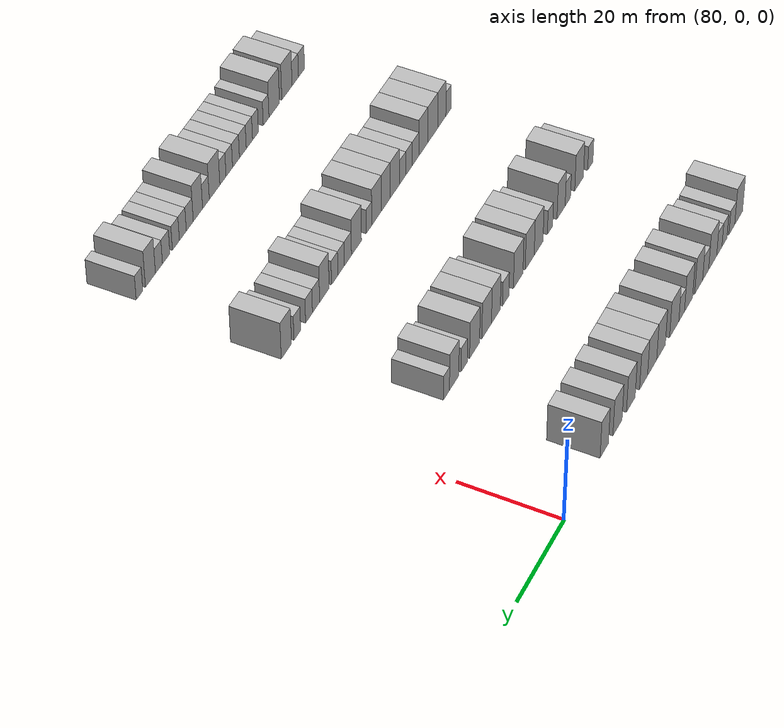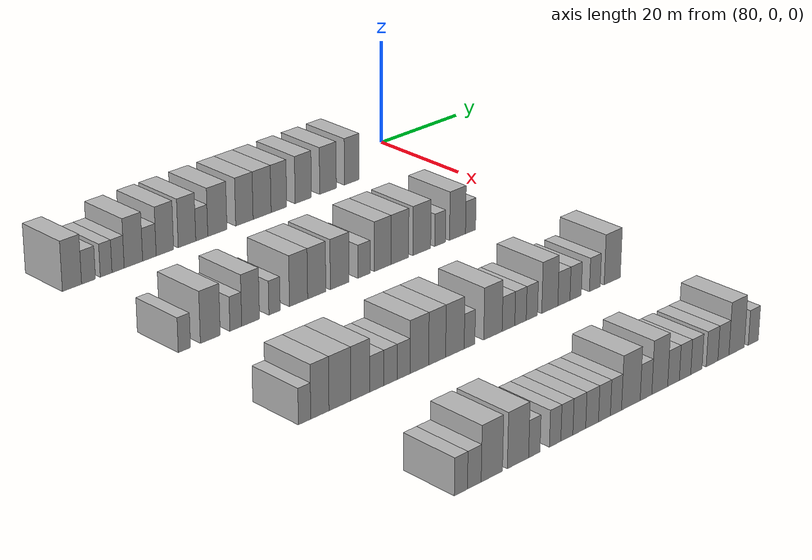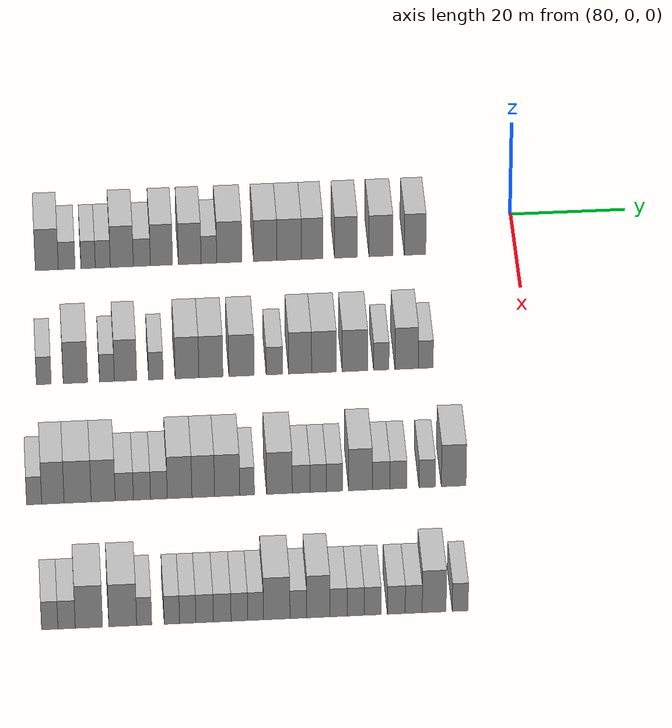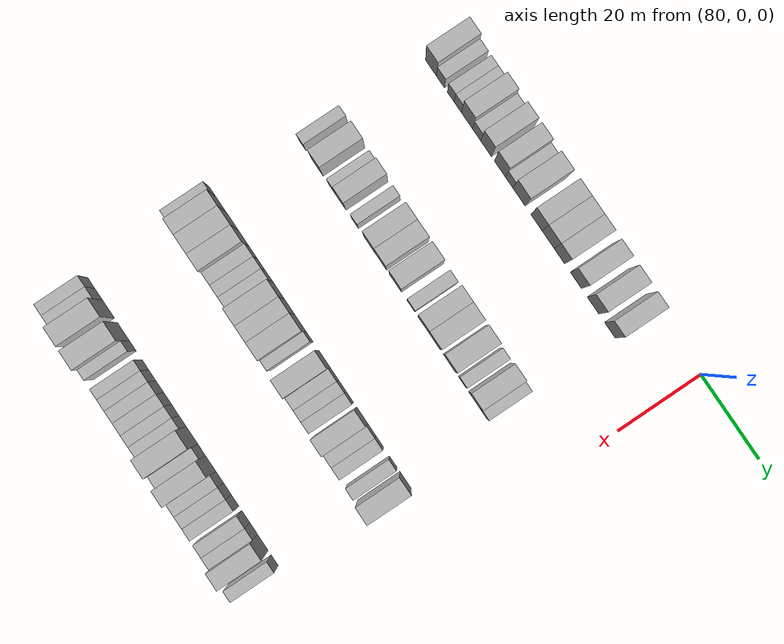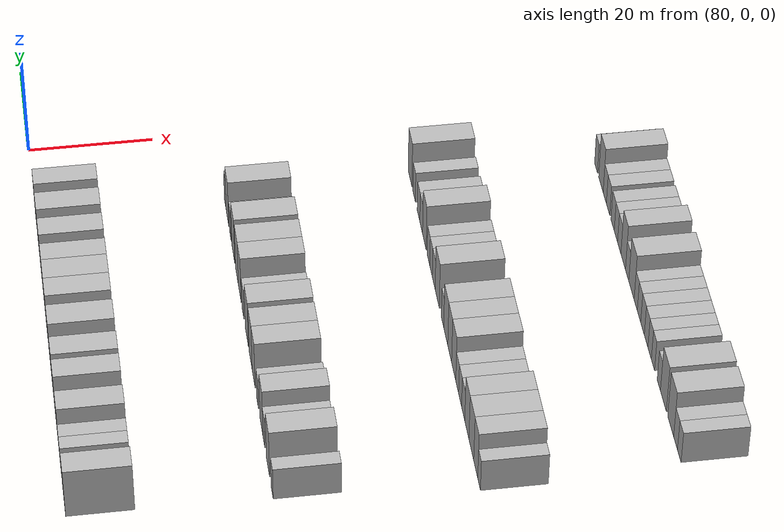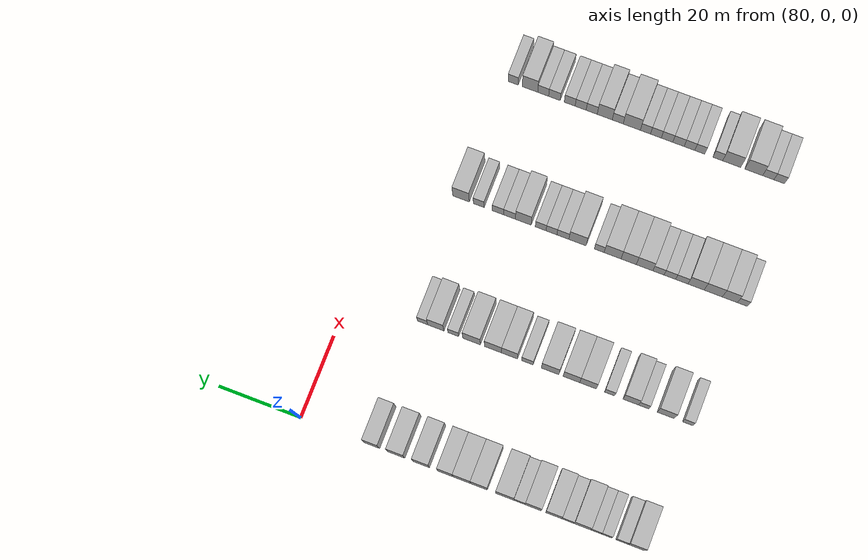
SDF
<sdf version="1.6">
 <world name="default">
  <model name="building_535">
   <static>1</static>
   <pose>85.0000 -80.4935 0 0.000000 0.000000 0.000000</pose>
   <link name="link">
    <pose>0 0 4.50 0 0 0</pose>
    <collision name="collision"><geometry><box><size>10.0000 3.9296 9.0000</size></box></geometry></collision>
    <visual name="visual">
     <cast_shadows>0</cast_shadows>
     <geometry><box><size>10.0000 3.9296 9.0000</size></box></geometry>
     <material>
      <script>
       <uri>model://HANNAS_wall/materials/scripts</uri>
       <uri>model://HANNAS_wall/materials/textures</uri>
       <name>vrc/HANNAS_wall</name>
      </script>
     </material>
    </visual>
   </link>
  </model>
  <model name="building_536">
   <static>1</static>
   <pose>85.0000 -77.0921 0 0.000000 0.000000 0.000000</pose>
   <link name="link">
    <pose>0 0 3.00 0 0 0</pose>
    <collision name="collision"><geometry><box><size>10.0000 2.8733 6.0000</size></box></geometry></collision>
    <visual name="visual">
     <cast_shadows>0</cast_shadows>
     <geometry><box><size>10.0000 2.8733 6.0000</size></box></geometry>
     <material>
      <script>
       <uri>model://HANNAS_wall/materials/scripts</uri>
       <uri>model://HANNAS_wall/materials/textures</uri>
       <name>vrc/HANNAS_wall</name>
      </script>
     </material>
    </visual>
   </link>
  </model>
  <model name="building_537">
   <static>1</static>
   <pose>85.0000 -73.4251 0 0.000000 0.000000 0.000000</pose>
   <link name="link">
    <pose>0 0 3.00 0 0 0</pose>
    <collision name="collision"><geometry><box><size>10.0000 2.4605 6.0000</size></box></geometry></collision>
    <visual name="visual">
     <cast_shadows>0</cast_shadows>
     <geometry><box><size>10.0000 2.4605 6.0000</size></box></geometry>
     <material>
      <script>
       <uri>model://HANNAS_wall/materials/scripts</uri>
       <uri>model://HANNAS_wall/materials/textures</uri>
       <name>vrc/HANNAS_wall</name>
      </script>
     </material>
    </visual>
   </link>
  </model>
  <model name="building_538">
   <static>1</static>
   <pose>85.0000 -70.9087 0 0.000000 0.000000 0.000000</pose>
   <link name="link">
    <pose>0 0 3.00 0 0 0</pose>
    <collision name="collision"><geometry><box><size>10.0000 2.5722 6.0000</size></box></geometry></collision>
    <visual name="visual">
     <cast_shadows>0</cast_shadows>
     <geometry><box><size>10.0000 2.5722 6.0000</size></box></geometry>
     <material>
      <script>
       <uri>model://HANNAS_wall/materials/scripts</uri>
       <uri>model://HANNAS_wall/materials/textures</uri>
       <name>vrc/HANNAS_wall</name>
      </script>
     </material>
    </visual>
   </link>
  </model>
  <model name="building_539">
   <static>1</static>
   <pose>85.0000 -67.6504 0 0.000000 0.000000 0.000000</pose>
   <link name="link">
    <pose>0 0 4.50 0 0 0</pose>
    <collision name="collision"><geometry><box><size>10.0000 3.9444 9.0000</size></box></geometry></collision>
    <visual name="visual">
     <cast_shadows>0</cast_shadows>
     <geometry><box><size>10.0000 3.9444 9.0000</size></box></geometry>
     <material>
      <script>
       <uri>model://HANNAS_wall/materials/scripts</uri>
       <uri>model://HANNAS_wall/materials/textures</uri>
       <name>vrc/HANNAS_wall</name>
      </script>
     </material>
    </visual>
   </link>
  </model>
  <model name="building_540">
   <static>1</static>
   <pose>85.0000 -64.2183 0 0.000000 0.000000 0.000000</pose>
   <link name="link">
    <pose>0 0 3.00 0 0 0</pose>
    <collision name="collision"><geometry><box><size>10.0000 2.9199 6.0000</size></box></geometry></collision>
    <visual name="visual">
     <cast_shadows>0</cast_shadows>
     <geometry><box><size>10.0000 2.9199 6.0000</size></box></geometry>
     <material>
      <script>
       <uri>model://HANNAS_wall/materials/scripts</uri>
       <uri>model://HANNAS_wall/materials/textures</uri>
       <name>vrc/HANNAS_wall</name>
      </script>
     </material>
    </visual>
   </link>
  </model>
  <model name="building_541">
   <static>1</static>
   <pose>85.0000 -60.8515 0 0.000000 0.000000 0.000000</pose>
   <link name="link">
    <pose>0 0 4.50 0 0 0</pose>
    <collision name="collision"><geometry><box><size>10.0000 3.8138 9.0000</size></box></geometry></collision>
    <visual name="visual">
     <cast_shadows>0</cast_shadows>
     <geometry><box><size>10.0000 3.8138 9.0000</size></box></geometry>
     <material>
      <script>
       <uri>model://HANNAS_wall/materials/scripts</uri>
       <uri>model://HANNAS_wall/materials/textures</uri>
       <name>vrc/HANNAS_wall</name>
      </script>
     </material>
    </visual>
   </link>
  </model>
  <model name="building_542">
   <static>1</static>
   <pose>85.0000 -56.0007 0 0.000000 0.000000 0.000000</pose>
   <link name="link">
    <pose>0 0 4.50 0 0 0</pose>
    <collision name="collision"><geometry><box><size>10.0000 3.8877 9.0000</size></box></geometry></collision>
    <visual name="visual">
     <cast_shadows>0</cast_shadows>
     <geometry><box><size>10.0000 3.8877 9.0000</size></box></geometry>
     <material>
      <script>
       <uri>model://HANNAS_wall/materials/scripts</uri>
       <uri>model://HANNAS_wall/materials/textures</uri>
       <name>vrc/HANNAS_wall</name>
      </script>
     </material>
    </visual>
   </link>
  </model>
  <model name="building_543">
   <static>1</static>
   <pose>85.0000 -52.7106 0 0.000000 0.000000 0.000000</pose>
   <link name="link">
    <pose>0 0 3.00 0 0 0</pose>
    <collision name="collision"><geometry><box><size>10.0000 2.6926 6.0000</size></box></geometry></collision>
    <visual name="visual">
     <cast_shadows>0</cast_shadows>
     <geometry><box><size>10.0000 2.6926 6.0000</size></box></geometry>
     <material>
      <script>
       <uri>model://HANNAS_wall/materials/scripts</uri>
       <uri>model://HANNAS_wall/materials/textures</uri>
       <name>vrc/HANNAS_wall</name>
      </script>
     </material>
    </visual>
   </link>
  </model>
  <model name="building_544">
   <static>1</static>
   <pose>85.0000 -49.1975 0 0.000000 0.000000 0.000000</pose>
   <link name="link">
    <pose>0 0 4.50 0 0 0</pose>
    <collision name="collision"><geometry><box><size>10.0000 4.3335 9.0000</size></box></geometry></collision>
    <visual name="visual">
     <cast_shadows>0</cast_shadows>
     <geometry><box><size>10.0000 4.3335 9.0000</size></box></geometry>
     <material>
      <script>
       <uri>model://HANNAS_wall/materials/scripts</uri>
       <uri>model://HANNAS_wall/materials/textures</uri>
       <name>vrc/HANNAS_wall</name>
      </script>
     </material>
    </visual>
   </link>
  </model>
  <model name="building_545">
   <static>1</static>
   <pose>85.0000 -43.0273 0 0.000000 0.000000 0.000000</pose>
   <link name="link">
    <pose>0 0 4.50 0 0 0</pose>
    <collision name="collision"><geometry><box><size>10.0000 4.0069 9.0000</size></box></geometry></collision>
    <visual name="visual">
     <cast_shadows>0</cast_shadows>
     <geometry><box><size>10.0000 4.0069 9.0000</size></box></geometry>
     <material>
      <script>
       <uri>model://HANNAS_wall/materials/scripts</uri>
       <uri>model://HANNAS_wall/materials/textures</uri>
       <name>vrc/HANNAS_wall</name>
      </script>
     </material>
    </visual>
   </link>
  </model>
  <model name="building_546">
   <static>1</static>
   <pose>85.0000 -38.9175 0 0.000000 0.000000 0.000000</pose>
   <link name="link">
    <pose>0 0 4.50 0 0 0</pose>
    <collision name="collision"><geometry><box><size>10.0000 4.2127 9.0000</size></box></geometry></collision>
    <visual name="visual">
     <cast_shadows>0</cast_shadows>
     <geometry><box><size>10.0000 4.2127 9.0000</size></box></geometry>
     <material>
      <script>
       <uri>model://HANNAS_wall/materials/scripts</uri>
       <uri>model://HANNAS_wall/materials/textures</uri>
       <name>vrc/HANNAS_wall</name>
      </script>
     </material>
    </visual>
   </link>
  </model>
  <model name="building_547">
   <static>1</static>
   <pose>85.0000 -34.9702 0 0.000000 0.000000 0.000000</pose>
   <link name="link">
    <pose>0 0 4.50 0 0 0</pose>
    <collision name="collision"><geometry><box><size>10.0000 3.6819 9.0000</size></box></geometry></collision>
    <visual name="visual">
     <cast_shadows>0</cast_shadows>
     <geometry><box><size>10.0000 3.6819 9.0000</size></box></geometry>
     <material>
      <script>
       <uri>model://HANNAS_wall/materials/scripts</uri>
       <uri>model://HANNAS_wall/materials/textures</uri>
       <name>vrc/HANNAS_wall</name>
      </script>
     </material>
    </visual>
   </link>
  </model>
  <model name="building_548">
   <static>1</static>
   <pose>85.0000 -29.1635 0 0.000000 0.000000 0.000000</pose>
   <link name="link">
    <pose>0 0 4.50 0 0 0</pose>
    <collision name="collision"><geometry><box><size>10.0000 3.9315 9.0000</size></box></geometry></collision>
    <visual name="visual">
     <cast_shadows>0</cast_shadows>
     <geometry><box><size>10.0000 3.9315 9.0000</size></box></geometry>
     <material>
      <script>
       <uri>model://HANNAS_wall/materials/scripts</uri>
       <uri>model://HANNAS_wall/materials/textures</uri>
       <name>vrc/HANNAS_wall</name>
      </script>
     </material>
    </visual>
   </link>
  </model>
  <model name="building_549">
   <static>1</static>
   <pose>85.0000 -23.1618 0 0.000000 0.000000 0.000000</pose>
   <link name="link">
    <pose>0 0 4.50 0 0 0</pose>
    <collision name="collision"><geometry><box><size>10.0000 4.0719 9.0000</size></box></geometry></collision>
    <visual name="visual">
     <cast_shadows>0</cast_shadows>
     <geometry><box><size>10.0000 4.0719 9.0000</size></box></geometry>
     <material>
      <script>
       <uri>model://HANNAS_wall/materials/scripts</uri>
       <uri>model://HANNAS_wall/materials/textures</uri>
       <name>vrc/HANNAS_wall</name>
      </script>
     </material>
    </visual>
   </link>
  </model>
  <model name="building_550">
   <static>1</static>
   <pose>85.0000 -17.2819 0 0.000000 0.000000 0.000000</pose>
   <link name="link">
    <pose>0 0 4.50 0 0 0</pose>
    <collision name="collision"><geometry><box><size>10.0000 3.6879 9.0000</size></box></geometry></collision>
    <visual name="visual">
     <cast_shadows>0</cast_shadows>
     <geometry><box><size>10.0000 3.6879 9.0000</size></box></geometry>
     <material>
      <script>
       <uri>model://HANNAS_wall/materials/scripts</uri>
       <uri>model://HANNAS_wall/materials/textures</uri>
       <name>vrc/HANNAS_wall</name>
      </script>
     </material>
    </visual>
   </link>
  </model>
  <model name="building_759">
   <static>1</static>
   <pose>115.0000 -81.7998 0 0.000000 0.000000 0.000000</pose>
   <link name="link">
    <pose>0 0 3.00 0 0 0</pose>
    <collision name="collision"><geometry><box><size>10.0000 2.4767 6.0000</size></box></geometry></collision>
    <visual name="visual">
     <cast_shadows>0</cast_shadows>
     <geometry><box><size>10.0000 2.4767 6.0000</size></box></geometry>
     <material>
      <script>
       <uri>model://HANNAS_wall/materials/scripts</uri>
       <uri>model://HANNAS_wall/materials/textures</uri>
       <name>vrc/HANNAS_wall</name>
      </script>
     </material>
    </visual>
   </link>
  </model>
  <model name="building_760">
   <static>1</static>
   <pose>115.0000 -76.5215 0 0.000000 0.000000 0.000000</pose>
   <link name="link">
    <pose>0 0 4.50 0 0 0</pose>
    <collision name="collision"><geometry><box><size>10.0000 4.0800 9.0000</size></box></geometry></collision>
    <visual name="visual">
     <cast_shadows>0</cast_shadows>
     <geometry><box><size>10.0000 4.0800 9.0000</size></box></geometry>
     <material>
      <script>
       <uri>model://HANNAS_wall/materials/scripts</uri>
       <uri>model://HANNAS_wall/materials/textures</uri>
       <name>vrc/HANNAS_wall</name>
      </script>
     </material>
    </visual>
   </link>
  </model>
  <model name="building_761">
   <static>1</static>
   <pose>115.0000 -71.2413 0 0.000000 0.000000 0.000000</pose>
   <link name="link">
    <pose>0 0 3.00 0 0 0</pose>
    <collision name="collision"><geometry><box><size>10.0000 2.4804 6.0000</size></box></geometry></collision>
    <visual name="visual">
     <cast_shadows>0</cast_shadows>
     <geometry><box><size>10.0000 2.4804 6.0000</size></box></geometry>
     <material>
      <script>
       <uri>model://HANNAS_wall/materials/scripts</uri>
       <uri>model://HANNAS_wall/materials/textures</uri>
       <name>vrc/HANNAS_wall</name>
      </script>
     </material>
    </visual>
   </link>
  </model>
  <model name="building_762">
   <static>1</static>
   <pose>115.0000 -68.1274 0 0.000000 0.000000 0.000000</pose>
   <link name="link">
    <pose>0 0 4.50 0 0 0</pose>
    <collision name="collision"><geometry><box><size>10.0000 3.7474 9.0000</size></box></geometry></collision>
    <visual name="visual">
     <cast_shadows>0</cast_shadows>
     <geometry><box><size>10.0000 3.7474 9.0000</size></box></geometry>
     <material>
      <script>
       <uri>model://HANNAS_wall/materials/scripts</uri>
       <uri>model://HANNAS_wall/materials/textures</uri>
       <name>vrc/HANNAS_wall</name>
      </script>
     </material>
    </visual>
   </link>
  </model>
  <model name="building_763">
   <static>1</static>
   <pose>115.0000 -63.0370 0 0.000000 0.000000 0.000000</pose>
   <link name="link">
    <pose>0 0 3.00 0 0 0</pose>
    <collision name="collision"><geometry><box><size>10.0000 2.4334 6.0000</size></box></geometry></collision>
    <visual name="visual">
     <cast_shadows>0</cast_shadows>
     <geometry><box><size>10.0000 2.4334 6.0000</size></box></geometry>
     <material>
      <script>
       <uri>model://HANNAS_wall/materials/scripts</uri>
       <uri>model://HANNAS_wall/materials/textures</uri>
       <name>vrc/HANNAS_wall</name>
      </script>
     </material>
    </visual>
   </link>
  </model>
  <model name="building_764">
   <static>1</static>
   <pose>115.0000 -57.8298 0 0.000000 0.000000 0.000000</pose>
   <link name="link">
    <pose>0 0 4.50 0 0 0</pose>
    <collision name="collision"><geometry><box><size>10.0000 3.9809 9.0000</size></box></geometry></collision>
    <visual name="visual">
     <cast_shadows>0</cast_shadows>
     <geometry><box><size>10.0000 3.9809 9.0000</size></box></geometry>
     <material>
      <script>
       <uri>model://HANNAS_wall/materials/scripts</uri>
       <uri>model://HANNAS_wall/materials/textures</uri>
       <name>vrc/HANNAS_wall</name>
      </script>
     </material>
    </visual>
   </link>
  </model>
  <model name="building_765">
   <static>1</static>
   <pose>115.0000 -53.8238 0 0.000000 0.000000 0.000000</pose>
   <link name="link">
    <pose>0 0 4.50 0 0 0</pose>
    <collision name="collision"><geometry><box><size>10.0000 4.0312 9.0000</size></box></geometry></collision>
    <visual name="visual">
     <cast_shadows>0</cast_shadows>
     <geometry><box><size>10.0000 4.0312 9.0000</size></box></geometry>
     <material>
      <script>
       <uri>model://HANNAS_wall/materials/scripts</uri>
       <uri>model://HANNAS_wall/materials/textures</uri>
       <name>vrc/HANNAS_wall</name>
      </script>
     </material>
    </visual>
   </link>
  </model>
  <model name="building_766">
   <static>1</static>
   <pose>115.0000 -48.6839 0 0.000000 0.000000 0.000000</pose>
   <link name="link">
    <pose>0 0 4.50 0 0 0</pose>
    <collision name="collision"><geometry><box><size>10.0000 4.2485 9.0000</size></box></geometry></collision>
    <visual name="visual">
     <cast_shadows>0</cast_shadows>
     <geometry><box><size>10.0000 4.2485 9.0000</size></box></geometry>
     <material>
      <script>
       <uri>model://HANNAS_wall/materials/scripts</uri>
       <uri>model://HANNAS_wall/materials/textures</uri>
       <name>vrc/HANNAS_wall</name>
      </script>
     </material>
    </visual>
   </link>
  </model>
  <model name="building_767">
   <static>1</static>
   <pose>115.0000 -43.1717 0 0.000000 0.000000 0.000000</pose>
   <link name="link">
    <pose>0 0 3.00 0 0 0</pose>
    <collision name="collision"><geometry><box><size>10.0000 2.7760 6.0000</size></box></geometry></collision>
    <visual name="visual">
     <cast_shadows>0</cast_shadows>
     <geometry><box><size>10.0000 2.7760 6.0000</size></box></geometry>
     <material>
      <script>
       <uri>model://HANNAS_wall/materials/scripts</uri>
       <uri>model://HANNAS_wall/materials/textures</uri>
       <name>vrc/HANNAS_wall</name>
      </script>
     </material>
    </visual>
   </link>
  </model>
  <model name="building_768">
   <static>1</static>
   <pose>115.0000 -38.8582 0 0.000000 0.000000 0.000000</pose>
   <link name="link">
    <pose>0 0 4.50 0 0 0</pose>
    <collision name="collision"><geometry><box><size>10.0000 3.8512 9.0000</size></box></geometry></collision>
    <visual name="visual">
     <cast_shadows>0</cast_shadows>
     <geometry><box><size>10.0000 3.8512 9.0000</size></box></geometry>
     <material>
      <script>
       <uri>model://HANNAS_wall/materials/scripts</uri>
       <uri>model://HANNAS_wall/materials/textures</uri>
       <name>vrc/HANNAS_wall</name>
      </script>
     </material>
    </visual>
   </link>
  </model>
  <model name="building_769">
   <static>1</static>
   <pose>115.0000 -34.8548 0 0.000000 0.000000 0.000000</pose>
   <link name="link">
    <pose>0 0 4.50 0 0 0</pose>
    <collision name="collision"><geometry><box><size>10.0000 4.1556 9.0000</size></box></geometry></collision>
    <visual name="visual">
     <cast_shadows>0</cast_shadows>
     <geometry><box><size>10.0000 4.1556 9.0000</size></box></geometry>
     <material>
      <script>
       <uri>model://HANNAS_wall/materials/scripts</uri>
       <uri>model://HANNAS_wall/materials/textures</uri>
       <name>vrc/HANNAS_wall</name>
      </script>
     </material>
    </visual>
   </link>
  </model>
  <model name="building_770">
   <static>1</static>
   <pose>115.0000 -29.6392 0 0.000000 0.000000 0.000000</pose>
   <link name="link">
    <pose>0 0 4.50 0 0 0</pose>
    <collision name="collision"><geometry><box><size>10.0000 4.2756 9.0000</size></box></geometry></collision>
    <visual name="visual">
     <cast_shadows>0</cast_shadows>
     <geometry><box><size>10.0000 4.2756 9.0000</size></box></geometry>
     <material>
      <script>
       <uri>model://HANNAS_wall/materials/scripts</uri>
       <uri>model://HANNAS_wall/materials/textures</uri>
       <name>vrc/HANNAS_wall</name>
      </script>
     </material>
    </visual>
   </link>
  </model>
  <model name="building_771">
   <static>1</static>
   <pose>115.0000 -25.2091 0 0.000000 0.000000 0.000000</pose>
   <link name="link">
    <pose>0 0 3.00 0 0 0</pose>
    <collision name="collision"><geometry><box><size>10.0000 2.5845 6.0000</size></box></geometry></collision>
    <visual name="visual">
     <cast_shadows>0</cast_shadows>
     <geometry><box><size>10.0000 2.5845 6.0000</size></box></geometry>
     <material>
      <script>
       <uri>model://HANNAS_wall/materials/scripts</uri>
       <uri>model://HANNAS_wall/materials/textures</uri>
       <name>vrc/HANNAS_wall</name>
      </script>
     </material>
    </visual>
   </link>
  </model>
  <model name="building_772">
   <static>1</static>
   <pose>115.0000 -20.9506 0 0.000000 0.000000 0.000000</pose>
   <link name="link">
    <pose>0 0 4.50 0 0 0</pose>
    <collision name="collision"><geometry><box><size>10.0000 3.9324 9.0000</size></box></geometry></collision>
    <visual name="visual">
     <cast_shadows>0</cast_shadows>
     <geometry><box><size>10.0000 3.9324 9.0000</size></box></geometry>
     <material>
      <script>
       <uri>model://HANNAS_wall/materials/scripts</uri>
       <uri>model://HANNAS_wall/materials/textures</uri>
       <name>vrc/HANNAS_wall</name>
      </script>
     </material>
    </visual>
   </link>
  </model>
  <model name="building_773">
   <static>1</static>
   <pose>115.0000 -17.7342 0 0.000000 0.000000 0.000000</pose>
   <link name="link">
    <pose>0 0 3.00 0 0 0</pose>
    <collision name="collision"><geometry><box><size>10.0000 2.5004 6.0000</size></box></geometry></collision>
    <visual name="visual">
     <cast_shadows>0</cast_shadows>
     <geometry><box><size>10.0000 2.5004 6.0000</size></box></geometry>
     <material>
      <script>
       <uri>model://HANNAS_wall/materials/scripts</uri>
       <uri>model://HANNAS_wall/materials/textures</uri>
       <name>vrc/HANNAS_wall</name>
      </script>
     </material>
    </visual>
   </link>
  </model>
  <model name="building_978">
   <static>1</static>
   <pose>145.0000 -84.1716 0 0.000000 0.000000 0.000000</pose>
   <link name="link">
    <pose>0 0 3.00 0 0 0</pose>
    <collision name="collision"><geometry><box><size>10.0000 2.4574 6.0000</size></box></geometry></collision>
    <visual name="visual">
     <cast_shadows>0</cast_shadows>
     <geometry><box><size>10.0000 2.4574 6.0000</size></box></geometry>
     <material>
      <script>
       <uri>model://HANNAS_wall/materials/scripts</uri>
       <uri>model://HANNAS_wall/materials/textures</uri>
       <name>vrc/HANNAS_wall</name>
      </script>
     </material>
    </visual>
   </link>
  </model>
  <model name="building_979">
   <static>1</static>
   <pose>145.0000 -81.1116 0 0.000000 0.000000 0.000000</pose>
   <link name="link">
    <pose>0 0 4.50 0 0 0</pose>
    <collision name="collision"><geometry><box><size>10.0000 3.6627 9.0000</size></box></geometry></collision>
    <visual name="visual">
     <cast_shadows>0</cast_shadows>
     <geometry><box><size>10.0000 3.6627 9.0000</size></box></geometry>
     <material>
      <script>
       <uri>model://HANNAS_wall/materials/scripts</uri>
       <uri>model://HANNAS_wall/materials/textures</uri>
       <name>vrc/HANNAS_wall</name>
      </script>
     </material>
    </visual>
   </link>
  </model>
  <model name="building_980">
   <static>1</static>
   <pose>145.0000 -77.0739 0 0.000000 0.000000 0.000000</pose>
   <link name="link">
    <pose>0 0 4.50 0 0 0</pose>
    <collision name="collision"><geometry><box><size>10.0000 4.4127 9.0000</size></box></geometry></collision>
    <visual name="visual">
     <cast_shadows>0</cast_shadows>
     <geometry><box><size>10.0000 4.4127 9.0000</size></box></geometry>
     <material>
      <script>
       <uri>model://HANNAS_wall/materials/scripts</uri>
       <uri>model://HANNAS_wall/materials/textures</uri>
       <name>vrc/HANNAS_wall</name>
      </script>
     </material>
    </visual>
   </link>
  </model>
  <model name="building_981">
   <static>1</static>
   <pose>145.0000 -72.9054 0 0.000000 0.000000 0.000000</pose>
   <link name="link">
    <pose>0 0 4.50 0 0 0</pose>
    <collision name="collision"><geometry><box><size>10.0000 3.9242 9.0000</size></box></geometry></collision>
    <visual name="visual">
     <cast_shadows>0</cast_shadows>
     <geometry><box><size>10.0000 3.9242 9.0000</size></box></geometry>
     <material>
      <script>
       <uri>model://HANNAS_wall/materials/scripts</uri>
       <uri>model://HANNAS_wall/materials/textures</uri>
       <name>vrc/HANNAS_wall</name>
      </script>
     </material>
    </visual>
   </link>
  </model>
  <model name="building_982">
   <static>1</static>
   <pose>145.0000 -69.4521 0 0.000000 0.000000 0.000000</pose>
   <link name="link">
    <pose>0 0 3.00 0 0 0</pose>
    <collision name="collision"><geometry><box><size>10.0000 2.9826 6.0000</size></box></geometry></collision>
    <visual name="visual">
     <cast_shadows>0</cast_shadows>
     <geometry><box><size>10.0000 2.9826 6.0000</size></box></geometry>
     <material>
      <script>
       <uri>model://HANNAS_wall/materials/scripts</uri>
       <uri>model://HANNAS_wall/materials/textures</uri>
       <name>vrc/HANNAS_wall</name>
      </script>
     </material>
    </visual>
   </link>
  </model>
  <model name="building_983">
   <static>1</static>
   <pose>145.0000 -66.5602 0 0.000000 0.000000 0.000000</pose>
   <link name="link">
    <pose>0 0 3.00 0 0 0</pose>
    <collision name="collision"><geometry><box><size>10.0000 2.8013 6.0000</size></box></geometry></collision>
    <visual name="visual">
     <cast_shadows>0</cast_shadows>
     <geometry><box><size>10.0000 2.8013 6.0000</size></box></geometry>
     <material>
      <script>
       <uri>model://HANNAS_wall/materials/scripts</uri>
       <uri>model://HANNAS_wall/materials/textures</uri>
       <name>vrc/HANNAS_wall</name>
      </script>
     </material>
    </visual>
   </link>
  </model>
  <model name="building_984">
   <static>1</static>
   <pose>145.0000 -63.7896 0 0.000000 0.000000 0.000000</pose>
   <link name="link">
    <pose>0 0 3.00 0 0 0</pose>
    <collision name="collision"><geometry><box><size>10.0000 2.7398 6.0000</size></box></geometry></collision>
    <visual name="visual">
     <cast_shadows>0</cast_shadows>
     <geometry><box><size>10.0000 2.7398 6.0000</size></box></geometry>
     <material>
      <script>
       <uri>model://HANNAS_wall/materials/scripts</uri>
       <uri>model://HANNAS_wall/materials/textures</uri>
       <name>vrc/HANNAS_wall</name>
      </script>
     </material>
    </visual>
   </link>
  </model>
  <model name="building_985">
   <static>1</static>
   <pose>145.0000 -60.4027 0 0.000000 0.000000 0.000000</pose>
   <link name="link">
    <pose>0 0 4.50 0 0 0</pose>
    <collision name="collision"><geometry><box><size>10.0000 4.0340 9.0000</size></box></geometry></collision>
    <visual name="visual">
     <cast_shadows>0</cast_shadows>
     <geometry><box><size>10.0000 4.0340 9.0000</size></box></geometry>
     <material>
      <script>
       <uri>model://HANNAS_wall/materials/scripts</uri>
       <uri>model://HANNAS_wall/materials/textures</uri>
       <name>vrc/HANNAS_wall</name>
      </script>
     </material>
    </visual>
   </link>
  </model>
  <model name="building_986">
   <static>1</static>
   <pose>145.0000 -56.5279 0 0.000000 0.000000 0.000000</pose>
   <link name="link">
    <pose>0 0 4.50 0 0 0</pose>
    <collision name="collision"><geometry><box><size>10.0000 3.7156 9.0000</size></box></geometry></collision>
    <visual name="visual">
     <cast_shadows>0</cast_shadows>
     <geometry><box><size>10.0000 3.7156 9.0000</size></box></geometry>
     <material>
      <script>
       <uri>model://HANNAS_wall/materials/scripts</uri>
       <uri>model://HANNAS_wall/materials/textures</uri>
       <name>vrc/HANNAS_wall</name>
      </script>
     </material>
    </visual>
   </link>
  </model>
  <model name="building_987">
   <static>1</static>
   <pose>145.0000 -52.6129 0 0.000000 0.000000 0.000000</pose>
   <link name="link">
    <pose>0 0 4.50 0 0 0</pose>
    <collision name="collision"><geometry><box><size>10.0000 4.1143 9.0000</size></box></geometry></collision>
    <visual name="visual">
     <cast_shadows>0</cast_shadows>
     <geometry><box><size>10.0000 4.1143 9.0000</size></box></geometry>
     <material>
      <script>
       <uri>model://HANNAS_wall/materials/scripts</uri>
       <uri>model://HANNAS_wall/materials/textures</uri>
       <name>vrc/HANNAS_wall</name>
      </script>
     </material>
    </visual>
   </link>
  </model>
  <model name="building_988">
   <static>1</static>
   <pose>145.0000 -49.3531 0 0.000000 0.000000 0.000000</pose>
   <link name="link">
    <pose>0 0 3.00 0 0 0</pose>
    <collision name="collision"><geometry><box><size>10.0000 2.4053 6.0000</size></box></geometry></collision>
    <visual name="visual">
     <cast_shadows>0</cast_shadows>
     <geometry><box><size>10.0000 2.4053 6.0000</size></box></geometry>
     <material>
      <script>
       <uri>model://HANNAS_wall/materials/scripts</uri>
       <uri>model://HANNAS_wall/materials/textures</uri>
       <name>vrc/HANNAS_wall</name>
      </script>
     </material>
    </visual>
   </link>
  </model>
  <model name="building_989">
   <static>1</static>
   <pose>145.0000 -44.0471 0 0.000000 0.000000 0.000000</pose>
   <link name="link">
    <pose>0 0 4.50 0 0 0</pose>
    <collision name="collision"><geometry><box><size>10.0000 4.2067 9.0000</size></box></geometry></collision>
    <visual name="visual">
     <cast_shadows>0</cast_shadows>
     <geometry><box><size>10.0000 4.2067 9.0000</size></box></geometry>
     <material>
      <script>
       <uri>model://HANNAS_wall/materials/scripts</uri>
       <uri>model://HANNAS_wall/materials/textures</uri>
       <name>vrc/HANNAS_wall</name>
      </script>
     </material>
    </visual>
   </link>
  </model>
  <model name="building_990">
   <static>1</static>
   <pose>145.0000 -40.4780 0 0.000000 0.000000 0.000000</pose>
   <link name="link">
    <pose>0 0 3.00 0 0 0</pose>
    <collision name="collision"><geometry><box><size>10.0000 2.9316 6.0000</size></box></geometry></collision>
    <visual name="visual">
     <cast_shadows>0</cast_shadows>
     <geometry><box><size>10.0000 2.9316 6.0000</size></box></geometry>
     <material>
      <script>
       <uri>model://HANNAS_wall/materials/scripts</uri>
       <uri>model://HANNAS_wall/materials/textures</uri>
       <name>vrc/HANNAS_wall</name>
      </script>
     </material>
    </visual>
   </link>
  </model>
  <model name="building_991">
   <static>1</static>
   <pose>145.0000 -37.6802 0 0.000000 0.000000 0.000000</pose>
   <link name="link">
    <pose>0 0 3.00 0 0 0</pose>
    <collision name="collision"><geometry><box><size>10.0000 2.6639 6.0000</size></box></geometry></collision>
    <visual name="visual">
     <cast_shadows>0</cast_shadows>
     <geometry><box><size>10.0000 2.6639 6.0000</size></box></geometry>
     <material>
      <script>
       <uri>model://HANNAS_wall/materials/scripts</uri>
       <uri>model://HANNAS_wall/materials/textures</uri>
       <name>vrc/HANNAS_wall</name>
      </script>
     </material>
    </visual>
   </link>
  </model>
  <model name="building_992">
   <static>1</static>
   <pose>145.0000 -35.0202 0 0.000000 0.000000 0.000000</pose>
   <link name="link">
    <pose>0 0 3.00 0 0 0</pose>
    <collision name="collision"><geometry><box><size>10.0000 2.6561 6.0000</size></box></geometry></collision>
    <visual name="visual">
     <cast_shadows>0</cast_shadows>
     <geometry><box><size>10.0000 2.6561 6.0000</size></box></geometry>
     <material>
      <script>
       <uri>model://HANNAS_wall/materials/scripts</uri>
       <uri>model://HANNAS_wall/materials/textures</uri>
       <name>vrc/HANNAS_wall</name>
      </script>
     </material>
    </visual>
   </link>
  </model>
  <model name="building_993">
   <static>1</static>
   <pose>145.0000 -30.7623 0 0.000000 0.000000 0.000000</pose>
   <link name="link">
    <pose>0 0 4.50 0 0 0</pose>
    <collision name="collision"><geometry><box><size>10.0000 3.8596 9.0000</size></box></geometry></collision>
    <visual name="visual">
     <cast_shadows>0</cast_shadows>
     <geometry><box><size>10.0000 3.8596 9.0000</size></box></geometry>
     <material>
      <script>
       <uri>model://HANNAS_wall/materials/scripts</uri>
       <uri>model://HANNAS_wall/materials/textures</uri>
       <name>vrc/HANNAS_wall</name>
      </script>
     </material>
    </visual>
   </link>
  </model>
  <model name="building_994">
   <static>1</static>
   <pose>145.0000 -27.3710 0 0.000000 0.000000 0.000000</pose>
   <link name="link">
    <pose>0 0 3.00 0 0 0</pose>
    <collision name="collision"><geometry><box><size>10.0000 2.9230 6.0000</size></box></geometry></collision>
    <visual name="visual">
     <cast_shadows>0</cast_shadows>
     <geometry><box><size>10.0000 2.9230 6.0000</size></box></geometry>
     <material>
      <script>
       <uri>model://HANNAS_wall/materials/scripts</uri>
       <uri>model://HANNAS_wall/materials/textures</uri>
       <name>vrc/HANNAS_wall</name>
      </script>
     </material>
    </visual>
   </link>
  </model>
  <model name="building_995">
   <static>1</static>
   <pose>145.0000 -24.5272 0 0.000000 0.000000 0.000000</pose>
   <link name="link">
    <pose>0 0 3.00 0 0 0</pose>
    <collision name="collision"><geometry><box><size>10.0000 2.7646 6.0000</size></box></geometry></collision>
    <visual name="visual">
     <cast_shadows>0</cast_shadows>
     <geometry><box><size>10.0000 2.7646 6.0000</size></box></geometry>
     <material>
      <script>
       <uri>model://HANNAS_wall/materials/scripts</uri>
       <uri>model://HANNAS_wall/materials/textures</uri>
       <name>vrc/HANNAS_wall</name>
      </script>
     </material>
    </visual>
   </link>
  </model>
  <model name="building_996">
   <static>1</static>
   <pose>145.0000 -19.8099 0 0.000000 0.000000 0.000000</pose>
   <link name="link">
    <pose>0 0 3.00 0 0 0</pose>
    <collision name="collision"><geometry><box><size>10.0000 2.6700 6.0000</size></box></geometry></collision>
    <visual name="visual">
     <cast_shadows>0</cast_shadows>
     <geometry><box><size>10.0000 2.6700 6.0000</size></box></geometry>
     <material>
      <script>
       <uri>model://HANNAS_wall/materials/scripts</uri>
       <uri>model://HANNAS_wall/materials/textures</uri>
       <name>vrc/HANNAS_wall</name>
      </script>
     </material>
    </visual>
   </link>
  </model>
  <model name="building_997">
   <static>1</static>
   <pose>145.0000 -15.4494 0 0.000000 0.000000 0.000000</pose>
   <link name="link">
    <pose>0 0 4.50 0 0 0</pose>
    <collision name="collision"><geometry><box><size>10.0000 4.0511 9.0000</size></box></geometry></collision>
    <visual name="visual">
     <cast_shadows>0</cast_shadows>
     <geometry><box><size>10.0000 4.0511 9.0000</size></box></geometry>
     <material>
      <script>
       <uri>model://HANNAS_wall/materials/scripts</uri>
       <uri>model://HANNAS_wall/materials/textures</uri>
       <name>vrc/HANNAS_wall</name>
      </script>
     </material>
    </visual>
   </link>
  </model>
  <model name="building_1215">
   <static>1</static>
   <pose>175.0000 -82.4423 0 0.000000 0.000000 0.000000</pose>
   <link name="link">
    <pose>0 0 3.00 0 0 0</pose>
    <collision name="collision"><geometry><box><size>10.0000 2.6096 6.0000</size></box></geometry></collision>
    <visual name="visual">
     <cast_shadows>0</cast_shadows>
     <geometry><box><size>10.0000 2.6096 6.0000</size></box></geometry>
     <material>
      <script>
       <uri>model://HANNAS_wall/materials/scripts</uri>
       <uri>model://HANNAS_wall/materials/textures</uri>
       <name>vrc/HANNAS_wall</name>
      </script>
     </material>
    </visual>
   </link>
  </model>
  <model name="building_1216">
   <static>1</static>
   <pose>175.0000 -79.7571 0 0.000000 0.000000 0.000000</pose>
   <link name="link">
    <pose>0 0 3.00 0 0 0</pose>
    <collision name="collision"><geometry><box><size>10.0000 2.7609 6.0000</size></box></geometry></collision>
    <visual name="visual">
     <cast_shadows>0</cast_shadows>
     <geometry><box><size>10.0000 2.7609 6.0000</size></box></geometry>
     <material>
      <script>
       <uri>model://HANNAS_wall/materials/scripts</uri>
       <uri>model://HANNAS_wall/materials/textures</uri>
       <name>vrc/HANNAS_wall</name>
      </script>
     </material>
    </visual>
   </link>
  </model>
  <model name="building_1217">
   <static>1</static>
   <pose>175.0000 -76.2006 0 0.000000 0.000000 0.000000</pose>
   <link name="link">
    <pose>0 0 4.50 0 0 0</pose>
    <collision name="collision"><geometry><box><size>10.0000 4.3520 9.0000</size></box></geometry></collision>
    <visual name="visual">
     <cast_shadows>0</cast_shadows>
     <geometry><box><size>10.0000 4.3520 9.0000</size></box></geometry>
     <material>
      <script>
       <uri>model://HANNAS_wall/materials/scripts</uri>
       <uri>model://HANNAS_wall/materials/textures</uri>
       <name>vrc/HANNAS_wall</name>
      </script>
     </material>
    </visual>
   </link>
  </model>
  <model name="building_1218">
   <static>1</static>
   <pose>175.0000 -70.8100 0 0.000000 0.000000 0.000000</pose>
   <link name="link">
    <pose>0 0 4.50 0 0 0</pose>
    <collision name="collision"><geometry><box><size>10.0000 4.4293 9.0000</size></box></geometry></collision>
    <visual name="visual">
     <cast_shadows>0</cast_shadows>
     <geometry><box><size>10.0000 4.4293 9.0000</size></box></geometry>
     <material>
      <script>
       <uri>model://HANNAS_wall/materials/scripts</uri>
       <uri>model://HANNAS_wall/materials/textures</uri>
       <name>vrc/HANNAS_wall</name>
      </script>
     </material>
    </visual>
   </link>
  </model>
  <model name="building_1219">
   <static>1</static>
   <pose>175.0000 -67.3927 0 0.000000 0.000000 0.000000</pose>
   <link name="link">
    <pose>0 0 3.00 0 0 0</pose>
    <collision name="collision"><geometry><box><size>10.0000 2.4053 6.0000</size></box></geometry></collision>
    <visual name="visual">
     <cast_shadows>0</cast_shadows>
     <geometry><box><size>10.0000 2.4053 6.0000</size></box></geometry>
     <material>
      <script>
       <uri>model://HANNAS_wall/materials/scripts</uri>
       <uri>model://HANNAS_wall/materials/textures</uri>
       <name>vrc/HANNAS_wall</name>
      </script>
     </material>
    </visual>
   </link>
  </model>
  <model name="building_1220">
   <static>1</static>
   <pose>175.0000 -62.9647 0 0.000000 0.000000 0.000000</pose>
   <link name="link">
    <pose>0 0 3.00 0 0 0</pose>
    <collision name="collision"><geometry><box><size>10.0000 2.4509 6.0000</size></box></geometry></collision>
    <visual name="visual">
     <cast_shadows>0</cast_shadows>
     <geometry><box><size>10.0000 2.4509 6.0000</size></box></geometry>
     <material>
      <script>
       <uri>model://HANNAS_wall/materials/scripts</uri>
       <uri>model://HANNAS_wall/materials/textures</uri>
       <name>vrc/HANNAS_wall</name>
      </script>
     </material>
    </visual>
   </link>
  </model>
  <model name="building_1221">
   <static>1</static>
   <pose>175.0000 -60.4349 0 0.000000 0.000000 0.000000</pose>
   <link name="link">
    <pose>0 0 3.00 0 0 0</pose>
    <collision name="collision"><geometry><box><size>10.0000 2.6087 6.0000</size></box></geometry></collision>
    <visual name="visual">
     <cast_shadows>0</cast_shadows>
     <geometry><box><size>10.0000 2.6087 6.0000</size></box></geometry>
     <material>
      <script>
       <uri>model://HANNAS_wall/materials/scripts</uri>
       <uri>model://HANNAS_wall/materials/textures</uri>
       <name>vrc/HANNAS_wall</name>
      </script>
     </material>
    </visual>
   </link>
  </model>
  <model name="building_1222">
   <static>1</static>
   <pose>175.0000 -57.7298 0 0.000000 0.000000 0.000000</pose>
   <link name="link">
    <pose>0 0 3.00 0 0 0</pose>
    <collision name="collision"><geometry><box><size>10.0000 2.8016 6.0000</size></box></geometry></collision>
    <visual name="visual">
     <cast_shadows>0</cast_shadows>
     <geometry><box><size>10.0000 2.8016 6.0000</size></box></geometry>
     <material>
      <script>
       <uri>model://HANNAS_wall/materials/scripts</uri>
       <uri>model://HANNAS_wall/materials/textures</uri>
       <name>vrc/HANNAS_wall</name>
      </script>
     </material>
    </visual>
   </link>
  </model>
  <model name="building_1223">
   <static>1</static>
   <pose>175.0000 -54.9182 0 0.000000 0.000000 0.000000</pose>
   <link name="link">
    <pose>0 0 3.00 0 0 0</pose>
    <collision name="collision"><geometry><box><size>10.0000 2.8215 6.0000</size></box></geometry></collision>
    <visual name="visual">
     <cast_shadows>0</cast_shadows>
     <geometry><box><size>10.0000 2.8215 6.0000</size></box></geometry>
     <material>
      <script>
       <uri>model://HANNAS_wall/materials/scripts</uri>
       <uri>model://HANNAS_wall/materials/textures</uri>
       <name>vrc/HANNAS_wall</name>
      </script>
     </material>
    </visual>
   </link>
  </model>
  <model name="building_1224">
   <static>1</static>
   <pose>175.0000 -52.1753 0 0.000000 0.000000 0.000000</pose>
   <link name="link">
    <pose>0 0 3.00 0 0 0</pose>
    <collision name="collision"><geometry><box><size>10.0000 2.6643 6.0000</size></box></geometry></collision>
    <visual name="visual">
     <cast_shadows>0</cast_shadows>
     <geometry><box><size>10.0000 2.6643 6.0000</size></box></geometry>
     <material>
      <script>
       <uri>model://HANNAS_wall/materials/scripts</uri>
       <uri>model://HANNAS_wall/materials/textures</uri>
       <name>vrc/HANNAS_wall</name>
      </script>
     </material>
    </visual>
   </link>
  </model>
  <model name="building_1225">
   <static>1</static>
   <pose>175.0000 -49.5886 0 0.000000 0.000000 0.000000</pose>
   <link name="link">
    <pose>0 0 3.00 0 0 0</pose>
    <collision name="collision"><geometry><box><size>10.0000 2.5091 6.0000</size></box></geometry></collision>
    <visual name="visual">
     <cast_shadows>0</cast_shadows>
     <geometry><box><size>10.0000 2.5091 6.0000</size></box></geometry>
     <material>
      <script>
       <uri>model://HANNAS_wall/materials/scripts</uri>
       <uri>model://HANNAS_wall/materials/textures</uri>
       <name>vrc/HANNAS_wall</name>
      </script>
     </material>
    </visual>
   </link>
  </model>
  <model name="building_1226">
   <static>1</static>
   <pose>175.0000 -46.2099 0 0.000000 0.000000 0.000000</pose>
   <link name="link">
    <pose>0 0 4.50 0 0 0</pose>
    <collision name="collision"><geometry><box><size>10.0000 4.2483 9.0000</size></box></geometry></collision>
    <visual name="visual">
     <cast_shadows>0</cast_shadows>
     <geometry><box><size>10.0000 4.2483 9.0000</size></box></geometry>
     <material>
      <script>
       <uri>model://HANNAS_wall/materials/scripts</uri>
       <uri>model://HANNAS_wall/materials/textures</uri>
       <name>vrc/HANNAS_wall</name>
      </script>
     </material>
    </visual>
   </link>
  </model>
  <model name="building_1227">
   <static>1</static>
   <pose>175.0000 -42.7426 0 0.000000 0.000000 0.000000</pose>
   <link name="link">
    <pose>0 0 3.00 0 0 0</pose>
    <collision name="collision"><geometry><box><size>10.0000 2.6865 6.0000</size></box></geometry></collision>
    <visual name="visual">
     <cast_shadows>0</cast_shadows>
     <geometry><box><size>10.0000 2.6865 6.0000</size></box></geometry>
     <material>
      <script>
       <uri>model://HANNAS_wall/materials/scripts</uri>
       <uri>model://HANNAS_wall/materials/textures</uri>
       <name>vrc/HANNAS_wall</name>
      </script>
     </material>
    </visual>
   </link>
  </model>
  <model name="building_1228">
   <static>1</static>
   <pose>175.0000 -39.5431 0 0.000000 0.000000 0.000000</pose>
   <link name="link">
    <pose>0 0 4.50 0 0 0</pose>
    <collision name="collision"><geometry><box><size>10.0000 3.7124 9.0000</size></box></geometry></collision>
    <visual name="visual">
     <cast_shadows>0</cast_shadows>
     <geometry><box><size>10.0000 3.7124 9.0000</size></box></geometry>
     <material>
      <script>
       <uri>model://HANNAS_wall/materials/scripts</uri>
       <uri>model://HANNAS_wall/materials/textures</uri>
       <name>vrc/HANNAS_wall</name>
      </script>
     </material>
    </visual>
   </link>
  </model>
  <model name="building_1229">
   <static>1</static>
   <pose>175.0000 -36.3121 0 0.000000 0.000000 0.000000</pose>
   <link name="link">
    <pose>0 0 3.00 0 0 0</pose>
    <collision name="collision"><geometry><box><size>10.0000 2.7495 6.0000</size></box></geometry></collision>
    <visual name="visual">
     <cast_shadows>0</cast_shadows>
     <geometry><box><size>10.0000 2.7495 6.0000</size></box></geometry>
     <material>
      <script>
       <uri>model://HANNAS_wall/materials/scripts</uri>
       <uri>model://HANNAS_wall/materials/textures</uri>
       <name>vrc/HANNAS_wall</name>
      </script>
     </material>
    </visual>
   </link>
  </model>
  <model name="building_1230">
   <static>1</static>
   <pose>175.0000 -33.5738 0 0.000000 0.000000 0.000000</pose>
   <link name="link">
    <pose>0 0 3.00 0 0 0</pose>
    <collision name="collision"><geometry><box><size>10.0000 2.7270 6.0000</size></box></geometry></collision>
    <visual name="visual">
     <cast_shadows>0</cast_shadows>
     <geometry><box><size>10.0000 2.7270 6.0000</size></box></geometry>
     <material>
      <script>
       <uri>model://HANNAS_wall/materials/scripts</uri>
       <uri>model://HANNAS_wall/materials/textures</uri>
       <name>vrc/HANNAS_wall</name>
      </script>
     </material>
    </visual>
   </link>
  </model>
  <model name="building_1231">
   <static>1</static>
   <pose>175.0000 -30.8495 0 0.000000 0.000000 0.000000</pose>
   <link name="link">
    <pose>0 0 3.00 0 0 0</pose>
    <collision name="collision"><geometry><box><size>10.0000 2.7216 6.0000</size></box></geometry></collision>
    <visual name="visual">
     <cast_shadows>0</cast_shadows>
     <geometry><box><size>10.0000 2.7216 6.0000</size></box></geometry>
     <material>
      <script>
       <uri>model://HANNAS_wall/materials/scripts</uri>
       <uri>model://HANNAS_wall/materials/textures</uri>
       <name>vrc/HANNAS_wall</name>
      </script>
     </material>
    </visual>
   </link>
  </model>
  <model name="building_1232">
   <static>1</static>
   <pose>175.0000 -27.0570 0 0.000000 0.000000 0.000000</pose>
   <link name="link">
    <pose>0 0 3.00 0 0 0</pose>
    <collision name="collision"><geometry><box><size>10.0000 2.8634 6.0000</size></box></geometry></collision>
    <visual name="visual">
     <cast_shadows>0</cast_shadows>
     <geometry><box><size>10.0000 2.8634 6.0000</size></box></geometry>
     <material>
      <script>
       <uri>model://HANNAS_wall/materials/scripts</uri>
       <uri>model://HANNAS_wall/materials/textures</uri>
       <name>vrc/HANNAS_wall</name>
      </script>
     </material>
    </visual>
   </link>
  </model>
  <model name="building_1233">
   <static>1</static>
   <pose>175.0000 -24.2689 0 0.000000 0.000000 0.000000</pose>
   <link name="link">
    <pose>0 0 3.00 0 0 0</pose>
    <collision name="collision"><geometry><box><size>10.0000 2.7128 6.0000</size></box></geometry></collision>
    <visual name="visual">
     <cast_shadows>0</cast_shadows>
     <geometry><box><size>10.0000 2.7128 6.0000</size></box></geometry>
     <material>
      <script>
       <uri>model://HANNAS_wall/materials/scripts</uri>
       <uri>model://HANNAS_wall/materials/textures</uri>
       <name>vrc/HANNAS_wall</name>
      </script>
     </material>
    </visual>
   </link>
  </model>
  <model name="building_1234">
   <static>1</static>
   <pose>175.0000 -20.9965 0 0.000000 0.000000 0.000000</pose>
   <link name="link">
    <pose>0 0 4.50 0 0 0</pose>
    <collision name="collision"><geometry><box><size>10.0000 3.8319 9.0000</size></box></geometry></collision>
    <visual name="visual">
     <cast_shadows>0</cast_shadows>
     <geometry><box><size>10.0000 3.8319 9.0000</size></box></geometry>
     <material>
      <script>
       <uri>model://HANNAS_wall/materials/scripts</uri>
       <uri>model://HANNAS_wall/materials/textures</uri>
       <name>vrc/HANNAS_wall</name>
      </script>
     </material>
    </visual>
   </link>
  </model>
  <model name="building_1235">
   <static>1</static>
   <pose>175.0000 -16.8141 0 0.000000 0.000000 0.000000</pose>
   <link name="link">
    <pose>0 0 3.00 0 0 0</pose>
    <collision name="collision"><geometry><box><size>10.0000 2.5329 6.0000</size></box></geometry></collision>
    <visual name="visual">
     <cast_shadows>0</cast_shadows>
     <geometry><box><size>10.0000 2.5329 6.0000</size></box></geometry>
     <material>
      <script>
       <uri>model://HANNAS_wall/materials/scripts</uri>
       <uri>model://HANNAS_wall/materials/textures</uri>
       <name>vrc/HANNAS_wall</name>
      </script>
     </material>
    </visual>
   </link>
  </model>
 </world>
</sdf>
